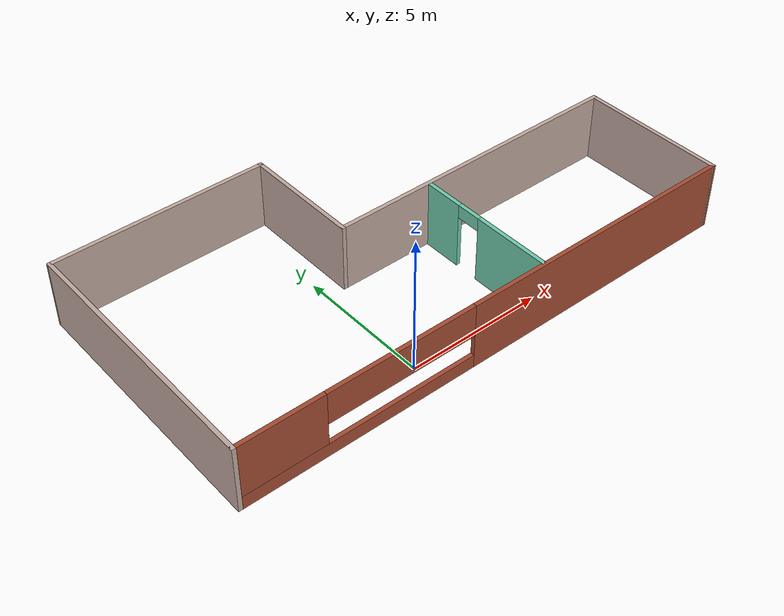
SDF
<?xml version='1.0'?>
<sdf version='1.6'>
  <model name='model'>
    <pose frame=''>2.45683 3.79002 0 0 -0 0</pose>
    <link name='Wall_0'>
      <collision name='Wall_0_Collision'>
        <geometry>
          <box>
            <size>9.77759 0.15 2.5</size>
          </box>
        </geometry>
        <pose frame=''>0 0 1.25 0 -0 0</pose>
      </collision>
      <visual name='Wall_0_Visual'>
        <pose frame=''>0 0 1.25 0 -0 0</pose>
        <geometry>
          <box>
            <size>9.77759 0.15 2.5</size>
          </box>
        </geometry>
        <material>
          <script>
            <uri>file://media/materials/scripts/gazebo.material</uri>
            <name>Gazebo/Grey</name>
          </script>
          <ambient>0.760784 0.662745 0.627451 1</ambient>
        </material>
        <meta>
          <layer>0</layer>
        </meta>
      </visual>
      <pose frame=''>-9.59996 0.036199 0 0 -0 1.56599</pose>
    </link>
    <link name='Wall_1'>
      <collision name='Wall_1_Collision'>
        <geometry>
          <box>
            <size>8 0.15 2.5</size>
          </box>
        </geometry>
        <pose frame=''>0 0 1.25 0 -0 0</pose>
      </collision>
      <visual name='Wall_1_Visual'>
        <pose frame=''>0 0 1.25 0 -0 0</pose>
        <geometry>
          <box>
            <size>8 0.15 2.5</size>
          </box>
        </geometry>
        <material>
          <script>
            <uri>file://media/materials/scripts/gazebo.material</uri>
            <name>Gazebo/Grey</name>
          </script>
          <ambient>0.760784 0.662745 0.627451 1</ambient>
        </material>
        <meta>
          <layer>0</layer>
        </meta>
      </visual>
      <pose frame=''>-5.65183 4.84998 0 0 -0 0</pose>
    </link>
    <link name='Wall_2'>
      <collision name='Wall_2_Collision'>
        <geometry>
          <box>
            <size>4.5 0.15 2.5</size>
          </box>
        </geometry>
        <pose frame=''>0 0 1.25 0 -0 0</pose>
      </collision>
      <visual name='Wall_2_Visual'>
        <pose frame=''>0 0 1.25 0 -0 0</pose>
        <geometry>
          <box>
            <size>4.5 0.15 2.5</size>
          </box>
        </geometry>
        <material>
          <script>
            <uri>file://media/materials/scripts/gazebo.material</uri>
            <name>Gazebo/Grey</name>
          </script>
          <ambient>0.760784 0.662745 0.627451 1</ambient>
        </material>
        <meta>
          <layer>0</layer>
        </meta>
      </visual>
      <pose frame=''>-1.72683 2.67498 0 0 0 -1.5708</pose>
    </link>
    <link name='Wall_3'>
      <collision name='Wall_3_Collision'>
        <geometry>
          <box>
            <size>11.5 0.15 2.5</size>
          </box>
        </geometry>
        <pose frame=''>0 0 1.25 0 -0 0</pose>
      </collision>
      <visual name='Wall_3_Visual'>
        <pose frame=''>0 0 1.25 0 -0 0</pose>
        <geometry>
          <box>
            <size>11.5 0.15 2.5</size>
          </box>
        </geometry>
        <material>
          <script>
            <uri>file://media/materials/scripts/gazebo.material</uri>
            <name>Gazebo/Grey</name>
          </script>
          <ambient>0.760784 0.662745 0.627451 1</ambient>
        </material>
        <meta>
          <layer>0</layer>
        </meta>
      </visual>
      <pose frame=''>3.94817 0.499982 0 0 -0 0</pose>
    </link>
    <link name='Wall_4'>
      <collision name='Wall_4_Collision'>
        <geometry>
          <box>
            <size>5.5 0.15 2.5</size>
          </box>
        </geometry>
        <pose frame=''>0 0 1.25 0 -0 0</pose>
      </collision>
      <visual name='Wall_4_Visual'>
        <pose frame=''>0 0 1.25 0 -0 0</pose>
        <geometry>
          <box>
            <size>5.5 0.15 2.5</size>
          </box>
        </geometry>
        <material>
          <script>
            <uri>file://media/materials/scripts/gazebo.material</uri>
            <name>Gazebo/Grey</name>
          </script>
          <ambient>0.760784 0.662745 0.627451 1</ambient>
        </material>
        <meta>
          <layer>0</layer>
        </meta>
      </visual>
      <pose frame=''>9.62317 -2.17502 0 0 0 -1.5708</pose>
    </link>
    <link name='Wall_5'>
      <pose frame=''>0.011605 -4.8138 0 0 -0 3.13782</pose>
      <visual name='Wall_5_Visual_0'>
        <pose frame=''>-4.32378 0 1.25 0 -0 0</pose>
        <geometry>
          <box>
            <size>10.7257 0.15 2.5</size>
          </box>
        </geometry>
        <material>
          <script>
            <uri>file://media/materials/scripts/gazebo.material</uri>
            <name>Gazebo/Bricks</name>
          </script>
          <ambient>1 1 1 1</ambient>
        </material>
        <meta>
          <layer>0</layer>
        </meta>
      </visual>
      <collision name='Wall_5_Collision_0'>
        <geometry>
          <box>
            <size>10.7257 0.15 2.5</size>
          </box>
        </geometry>
        <pose frame=''>-4.32378 0 1.25 0 -0 0</pose>
      </collision>
      <visual name='Wall_5_Visual_1'>
        <pose frame=''>5.36285 0 0.25 0 -0 0</pose>
        <geometry>
          <box>
            <size>8.64756 0.15 0.5</size>
          </box>
        </geometry>
        <material>
          <script>
            <uri>file://media/materials/scripts/gazebo.material</uri>
            <name>Gazebo/Bricks</name>
          </script>
          <ambient>1 1 1 1</ambient>
        </material>
        <meta>
          <layer>0</layer>
        </meta>
      </visual>
      <collision name='Wall_5_Collision_1'>
        <geometry>
          <box>
            <size>8.64756 0.15 0.5</size>
          </box>
        </geometry>
        <pose frame=''>5.36285 0 0.25 0 -0 0</pose>
      </collision>
      <visual name='Wall_5_Visual_2'>
        <pose frame=''>8.1226 0 1.5 0 -0 0</pose>
        <geometry>
          <box>
            <size>3.12808 0.15 2</size>
          </box>
        </geometry>
        <material>
          <script>
            <uri>file://media/materials/scripts/gazebo.material</uri>
            <name>Gazebo/Bricks</name>
          </script>
          <ambient>1 1 1 1</ambient>
        </material>
        <meta>
          <layer>0</layer>
        </meta>
      </visual>
      <collision name='Wall_5_Collision_2'>
        <geometry>
          <box>
            <size>3.12808 0.15 2</size>
          </box>
        </geometry>
        <pose frame=''>8.1226 0 1.5 0 -0 0</pose>
      </collision>
      <visual name='Wall_5_Visual_3'>
        <pose frame=''>3.79882 0 1.9 0 -0 0</pose>
        <geometry>
          <box>
            <size>5.51948 0.15 1.2</size>
          </box>
        </geometry>
        <material>
          <script>
            <uri>file://media/materials/scripts/gazebo.material</uri>
            <name>Gazebo/Bricks</name>
          </script>
          <ambient>1 1 1 1</ambient>
        </material>
        <meta>
          <layer>0</layer>
        </meta>
      </visual>
      <collision name='Wall_5_Collision_3'>
        <geometry>
          <box>
            <size>5.51948 0.15 1.2</size>
          </box>
        </geometry>
        <pose frame=''>3.79882 0 1.9 0 -0 0</pose>
      </collision>
    </link>
    <link name='Wall_7'>
      <pose frame=''>1.8565 -2.17046 0 0 0 -1.5708</pose>
      <visual name='Wall_7_Visual_0'>
        <pose frame=''>-1.88728 0 1.25 0 -0 0</pose>
        <geometry>
          <box>
            <size>1.47545 0.15 2.5</size>
          </box>
        </geometry>
        <material>
          <script>
            <uri>file://media/materials/scripts/gazebo.material</uri>
            <name>Gazebo/Grey</name>
          </script>
          <ambient>0.435294 0.796078 0.67451 1</ambient>
        </material>
        <meta>
          <layer>0</layer>
        </meta>
      </visual>
      <collision name='Wall_7_Collision_0'>
        <geometry>
          <box>
            <size>1.47545 0.15 2.5</size>
          </box>
        </geometry>
        <pose frame=''>-1.88728 0 1.25 0 -0 0</pose>
      </collision>
      <visual name='Wall_7_Visual_1'>
        <pose frame=''>1.18772 0 1.25 0 -0 0</pose>
        <geometry>
          <box>
            <size>2.87455 0.15 2.5</size>
          </box>
        </geometry>
        <material>
          <script>
            <uri>file://media/materials/scripts/gazebo.material</uri>
            <name>Gazebo/Grey</name>
          </script>
          <ambient>0.435294 0.796078 0.67451 1</ambient>
        </material>
        <meta>
          <layer>0</layer>
        </meta>
      </visual>
      <collision name='Wall_7_Collision_1'>
        <geometry>
          <box>
            <size>2.87455 0.15 2.5</size>
          </box>
        </geometry>
        <pose frame=''>1.18772 0 1.25 0 -0 0</pose>
      </collision>
      <visual name='Wall_7_Visual_2'>
        <pose frame=''>-0.699551 0 2.25 0 -0 0</pose>
        <geometry>
          <box>
            <size>0.9 0.15 0.5</size>
          </box>
        </geometry>
        <material>
          <script>
            <uri>file://media/materials/scripts/gazebo.material</uri>
            <name>Gazebo/Grey</name>
          </script>
          <ambient>0.435294 0.796078 0.67451 1</ambient>
        </material>
        <meta>
          <layer>0</layer>
        </meta>
      </visual>
      <collision name='Wall_7_Collision_2'>
        <geometry>
          <box>
            <size>0.9 0.15 0.5</size>
          </box>
        </geometry>
        <pose frame=''>-0.699551 0 2.25 0 -0 0</pose>
      </collision>
    </link>
    <static>1</static>
  </model>
</sdf>
